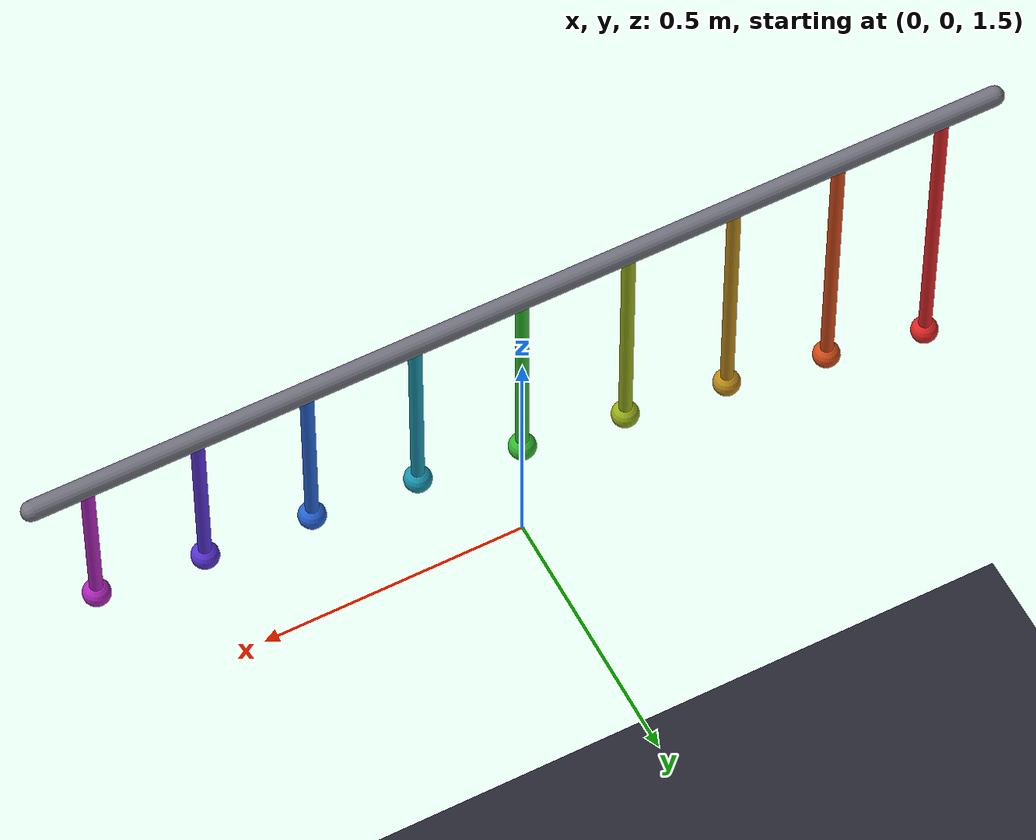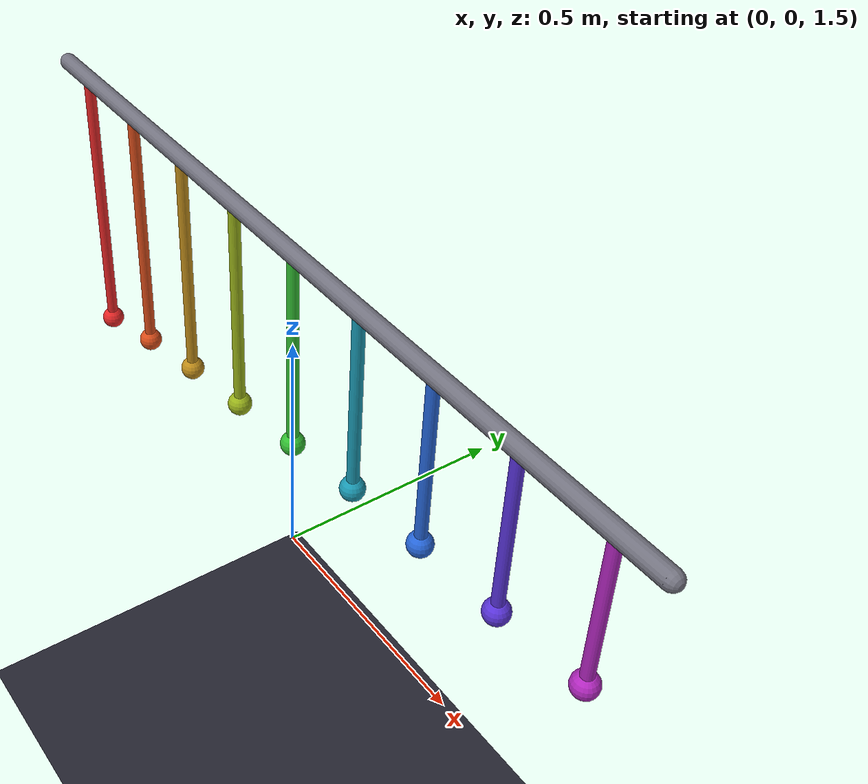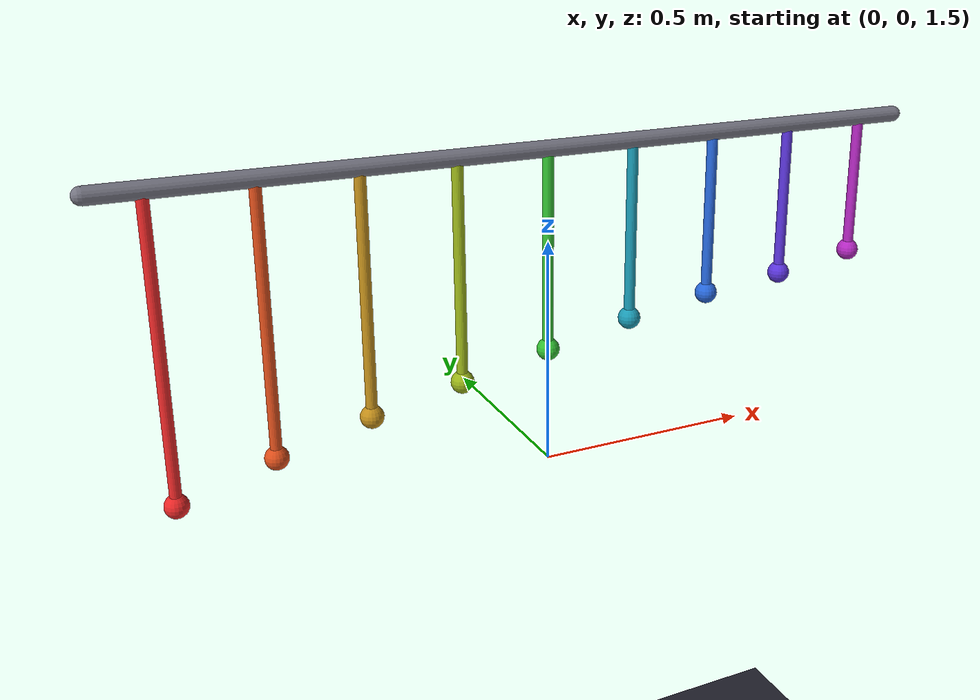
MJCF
<mujoco model="pendulum_wave">
  <option gravity="0 0 -9.81" timestep="0.002"/>
  <default>
    <joint damping="0.005"/>
    <geom friction="0.5 0.02 0.02"/>
  </default>
  <worldbody>
    <light pos="0 0 5" diffuse="0.85 0.85 0.85"/>
    <geom name="floor" type="plane" size="5 5 0.1" rgba="0.15 0.15 0.2 1"/>
    <body name="bar" pos="0 0 2.2">
      <geom type="capsule" fromto="-0.9 0 0 0.9 0 0" size="0.018"
            rgba="0.45 0.45 0.5 1" mass="5"/>
      <body name="p1" pos="-0.8 0 0">
        <joint name="j1" type="hinge" axis="0 1 0"/>
        <geom type="capsule" fromto="0 0 0 0 0 -0.63" size="0.012"
              rgba="0.9 0.15 0.15 1" mass="0.2"/>
        <geom type="sphere" pos="0 0 -0.63" size="0.025"
              rgba="0.9 0.15 0.15 1" mass="0.1"/>
      </body>
      <body name="p2" pos="-0.6 0 0">
        <joint name="j2" type="hinge" axis="0 1 0"/>
        <geom type="capsule" fromto="0 0 0 0 0 -0.57" size="0.012"
              rgba="0.85 0.3 0.1 1" mass="0.2"/>
        <geom type="sphere" pos="0 0 -0.57" size="0.025"
              rgba="0.85 0.3 0.1 1" mass="0.1"/>
      </body>
      <body name="p3" pos="-0.4 0 0">
        <joint name="j3" type="hinge" axis="0 1 0"/>
        <geom type="capsule" fromto="0 0 0 0 0 -0.52" size="0.012"
              rgba="0.75 0.55 0.1 1" mass="0.2"/>
        <geom type="sphere" pos="0 0 -0.52" size="0.025"
              rgba="0.75 0.55 0.1 1" mass="0.1"/>
      </body>
      <body name="p4" pos="-0.2 0 0">
        <joint name="j4" type="hinge" axis="0 1 0"/>
        <geom type="capsule" fromto="0 0 0 0 0 -0.48" size="0.012"
              rgba="0.6 0.7 0.1 1" mass="0.2"/>
        <geom type="sphere" pos="0 0 -0.48" size="0.025"
              rgba="0.6 0.7 0.1 1" mass="0.1"/>
      </body>
      <body name="p5" pos="0 0 0">
        <joint name="j5" type="hinge" axis="0 1 0"/>
        <geom type="capsule" fromto="0 0 0 0 0 -0.44" size="0.012"
              rgba="0.2 0.75 0.2 1" mass="0.2"/>
        <geom type="sphere" pos="0 0 -0.44" size="0.025"
              rgba="0.2 0.75 0.2 1" mass="0.1"/>
      </body>
      <body name="p6" pos="0.2 0 0">
        <joint name="j6" type="hinge" axis="0 1 0"/>
        <geom type="capsule" fromto="0 0 0 0 0 -0.40" size="0.012"
              rgba="0.1 0.6 0.7 1" mass="0.2"/>
        <geom type="sphere" pos="0 0 -0.40" size="0.025"
              rgba="0.1 0.6 0.7 1" mass="0.1"/>
      </body>
      <body name="p7" pos="0.4 0 0">
        <joint name="j7" type="hinge" axis="0 1 0"/>
        <geom type="capsule" fromto="0 0 0 0 0 -0.37" size="0.012"
              rgba="0.15 0.4 0.85 1" mass="0.2"/>
        <geom type="sphere" pos="0 0 -0.37" size="0.025"
              rgba="0.15 0.4 0.85 1" mass="0.1"/>
      </body>
      <body name="p8" pos="0.6 0 0">
        <joint name="j8" type="hinge" axis="0 1 0"/>
        <geom type="capsule" fromto="0 0 0 0 0 -0.35" size="0.012"
              rgba="0.35 0.2 0.85 1" mass="0.2"/>
        <geom type="sphere" pos="0 0 -0.35" size="0.025"
              rgba="0.35 0.2 0.85 1" mass="0.1"/>
      </body>
      <body name="p9" pos="0.8 0 0">
        <joint name="j9" type="hinge" axis="0 1 0"/>
        <geom type="capsule" fromto="0 0 0 0 0 -0.32" size="0.012"
              rgba="0.7 0.15 0.75 1" mass="0.2"/>
        <geom type="sphere" pos="0 0 -0.32" size="0.025"
              rgba="0.7 0.15 0.75 1" mass="0.1"/>
      </body>
    </body>
  </worldbody>
  <sensor>
    <jointpos name="j1_pos" joint="j1"/>
    <jointpos name="j2_pos" joint="j2"/>
    <jointpos name="j3_pos" joint="j3"/>
    <jointpos name="j4_pos" joint="j4"/>
    <jointpos name="j5_pos" joint="j5"/>
    <jointpos name="j6_pos" joint="j6"/>
    <jointpos name="j7_pos" joint="j7"/>
    <jointpos name="j8_pos" joint="j8"/>
    <jointpos name="j9_pos" joint="j9"/>
  </sensor>
</mujoco>
